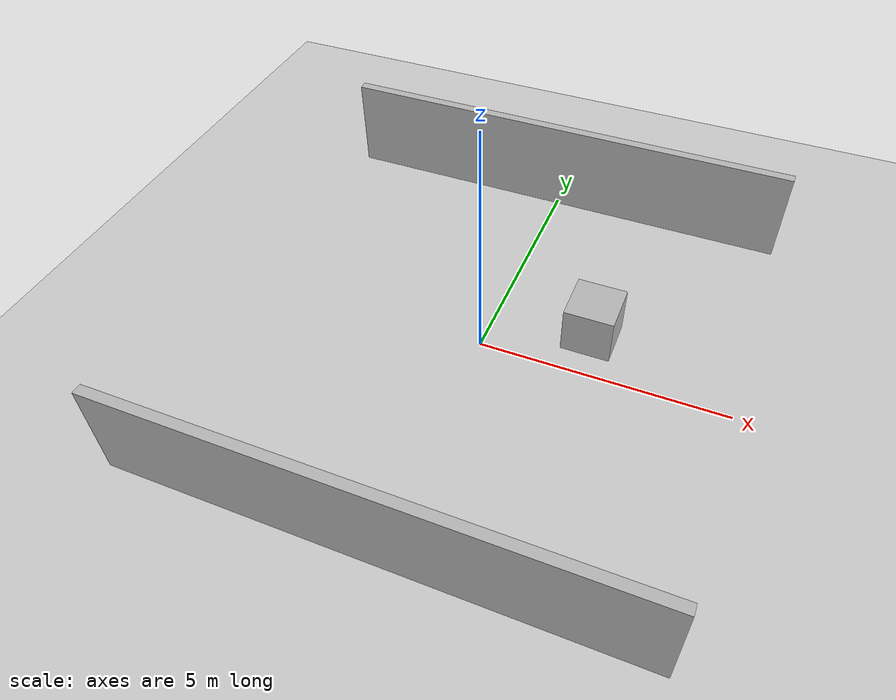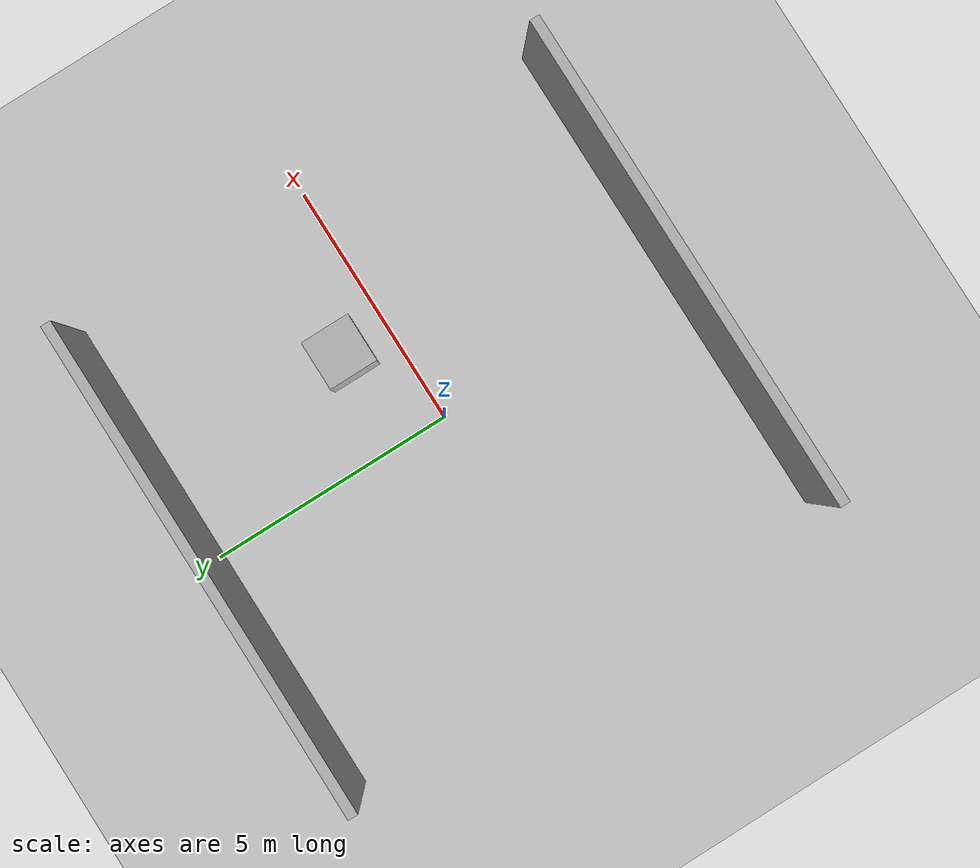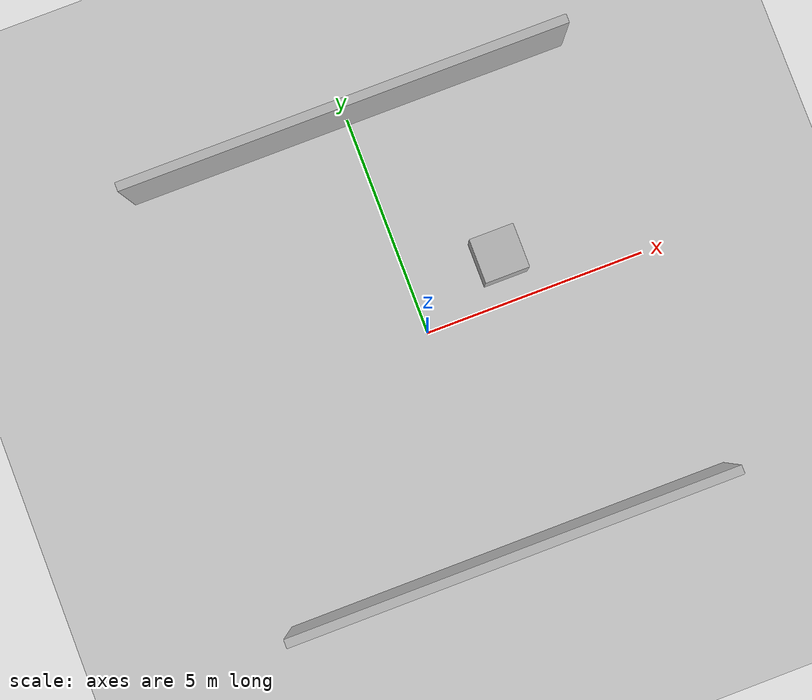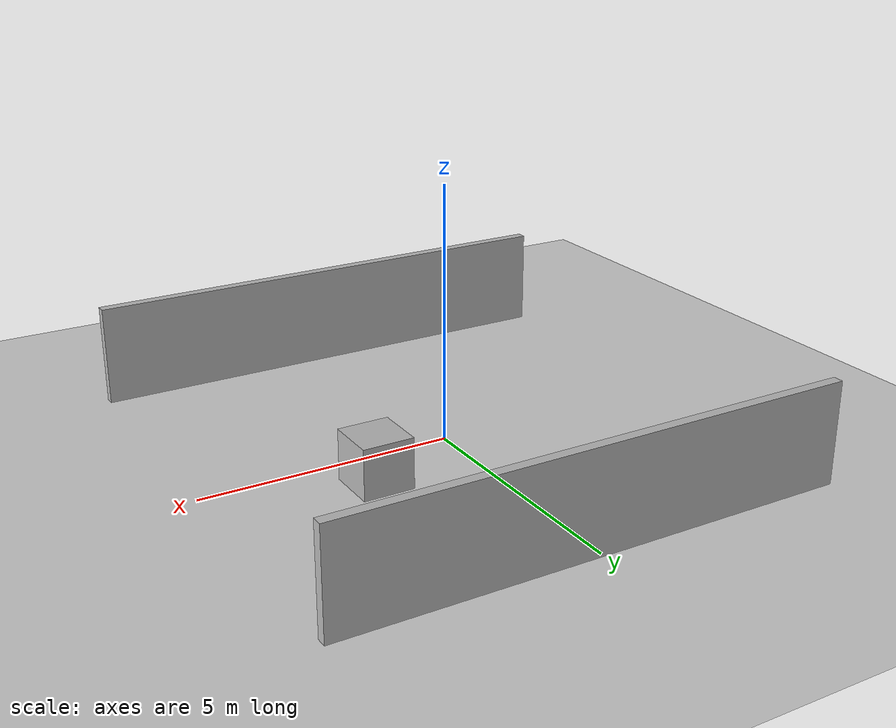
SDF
<?xml version="1.0"?>
<sdf version="1.7">
  <world name="factory_world">
    <include><uri>model://sun</uri></include>
    <include><uri>model://ground_plane</uri></include>

    <physics type="ode">
      <max_step_size>0.001</max_step_size>
      <real_time_factor>1.0</real_time_factor>
      <real_time_update_rate>1000</real_time_update_rate>
    </physics>

    <model name="wall_north">
      <static>true</static>
      <pose>0 5 1 0 0 0</pose>
      <link name="link">
        <collision name="collision">
          <geometry><box><size>10 0.2 2</size></box></geometry>
        </collision>
        <visual name="visual">
          <geometry><box><size>10 0.2 2</size></box></geometry>
        </visual>
      </link>
    </model>

    <model name="wall_south">
      <static>true</static>
      <pose>0 -5 1 0 0 0</pose>
      <link name="link">
        <collision name="collision">
          <geometry><box><size>10 0.2 2</size></box></geometry>
        </collision>
        <visual name="visual">
          <geometry><box><size>10 0.2 2</size></box></geometry>
        </visual>
      </link>
    </model>

    <model name="crate_1">
      <static>true</static>
      <pose>2 1 0.5 0 0 0</pose>
      <link name="link">
        <collision name="collision">
          <geometry><box><size>1 1 1</size></box></geometry>
        </collision>
        <visual name="visual">
          <geometry><box><size>1 1 1</size></box></geometry>
        </visual>
      </link>
    </model>
  </world>
</sdf>
